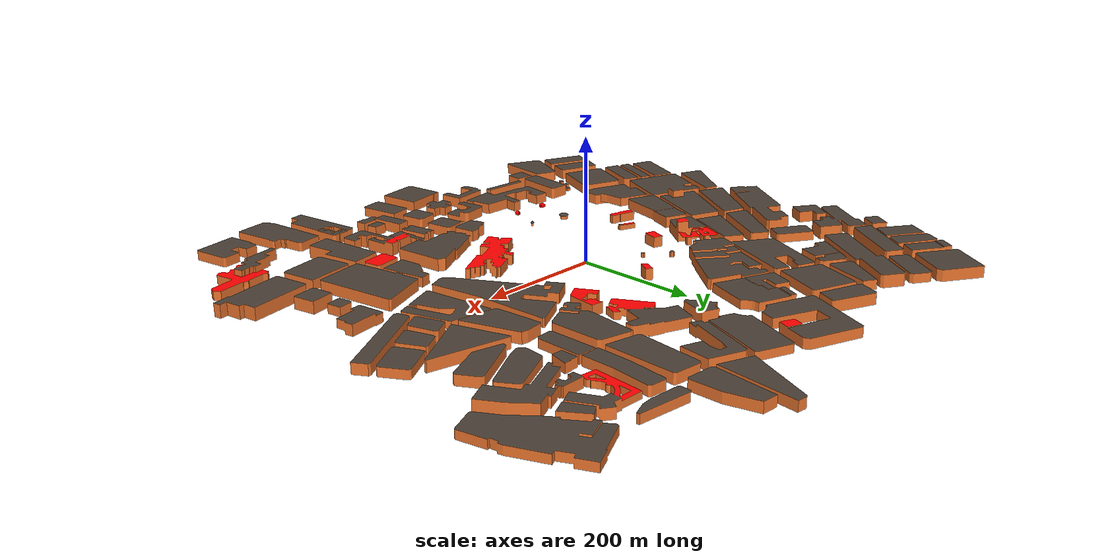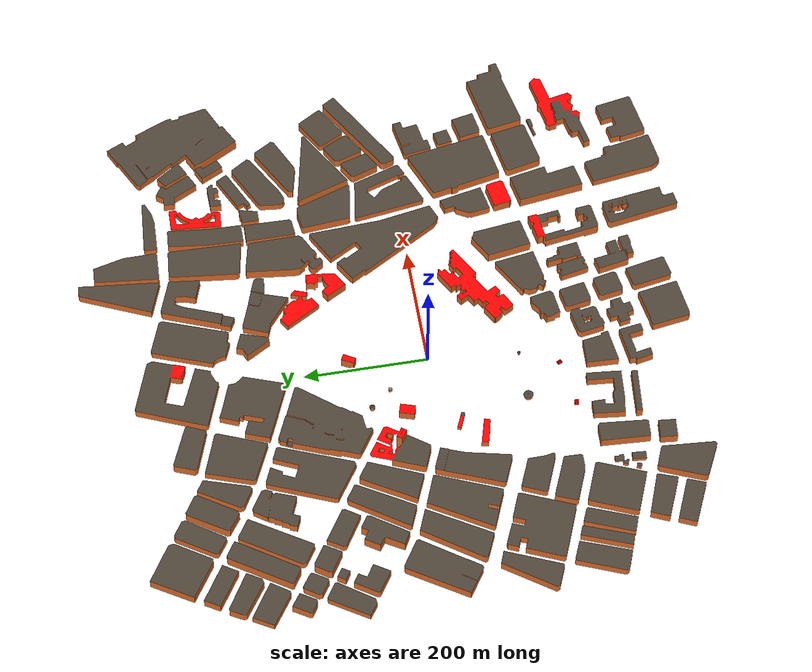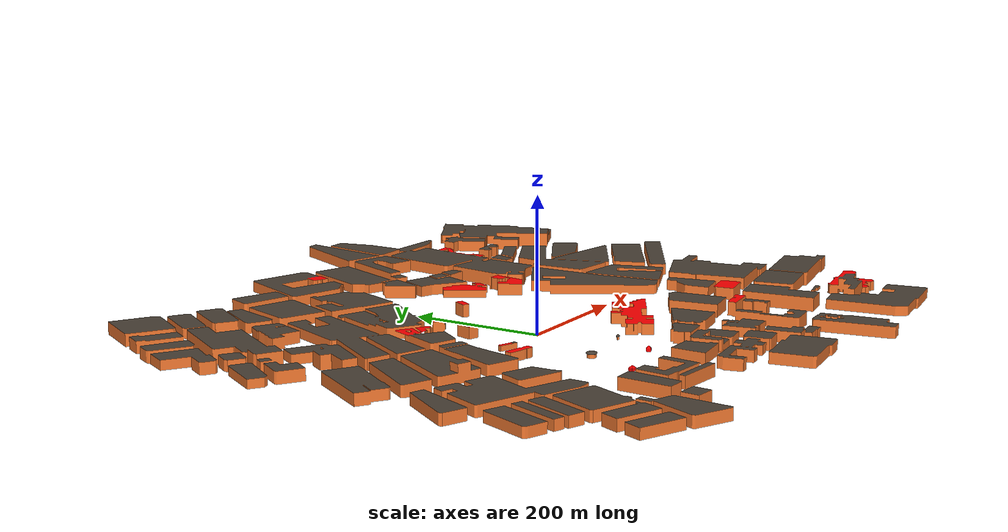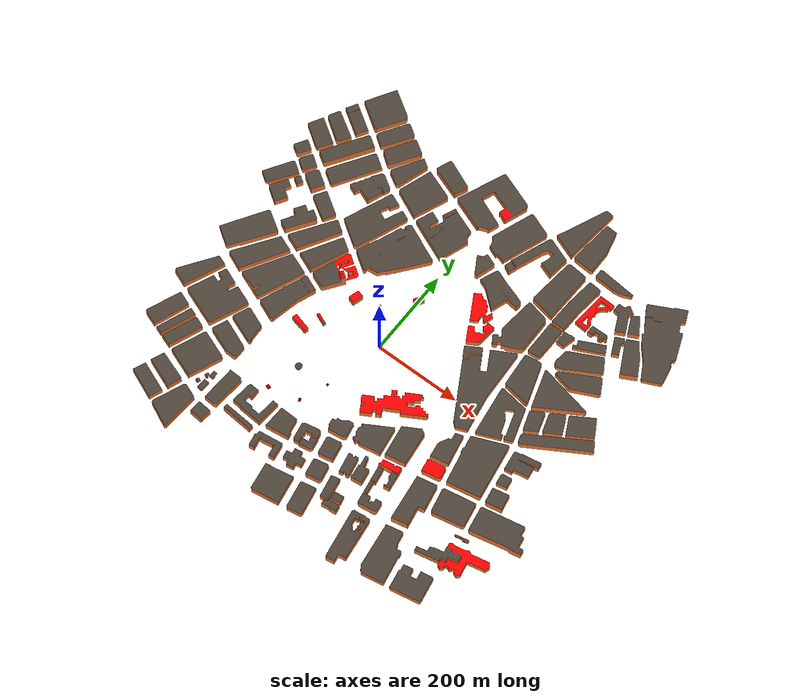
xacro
<robot name="robot">
  <link name="albacete_map_5.osm_buildings_link">
    <inertial>
      <origin xyz="0 0 0" rpy="0 0 0" />
      <mass value="1" />
      <inertia ixx="1" ixy="0" ixz="0" iyy="1" iyz="0" izz="1" />
    </inertial>
    <visual>
      <origin xyz="0 0 0" rpy="0 0 0" />
      <geometry>
        <mesh filename="file://$(find siam_main)/meshes/albacete_map_5.osm_buildings.dae" />
      </geometry>
    </visual>
    <collision>
      <origin xyz="0 0 0" rpy="0 0 0" />
      <geometry>
        <mesh filename="file://$(find siam_main)/meshes/albacete_map_5.osm_buildings.dae" />
      </geometry>
    </collision>
  </link>

  <gazebo> <static>true</static></gazebo>
</robot>
